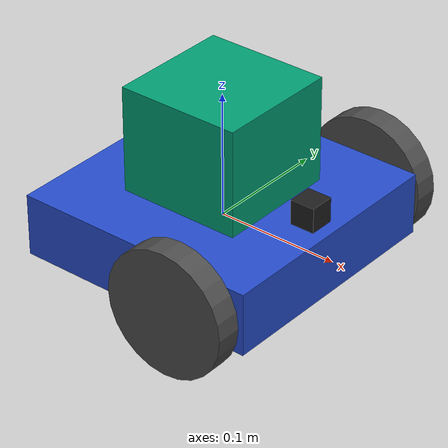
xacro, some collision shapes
<?xml version="1.0"?>
<robot xmlns:xacro="http://www.ros.org/wiki/xacro" name="my_robot">
  <xacro:include filename="$(find my_robot)/urdf/my_robot.gazebo" />

  <!-- Scale the robot size to fit the environment -->
  <xacro:property name="scale" value="1.0" />

  <xacro:property name="chassis_width" value="${scale * 0.20}" />
  <xacro:property name="chassis_length" value="${scale * 0.20}" />
  <xacro:property name="chassis_height" value="${scale * 0.05}" />
  <xacro:property name="chassis_mass" value="${scale * 0.1}" />

  <xacro:property name="camera_width" value="${scale * 0.02}" />
  <xacro:property name="camera_length" value="${scale * 0.02}" />
  <xacro:property name="camera_height" value="${scale * 0.02}" />
  <xacro:property name="camera_mass" value="${scale * 0.02}" />

  <xacro:property name="wheel_length" value="${scale * 0.02}" />
  <xacro:property name="wheel_radius" value="${scale * 0.05}" />
  <xacro:property name="wheel_mass" value="${scale * .05}" />
  <xacro:property name="wheel_inertia" value="${scale * 1e-3}" />
  <xacro:property name="wheel_separation" value="${chassis_width + wheel_length + 2*0.005*scale}" />
  <xacro:property name="wheel_base" value="${scale * 0.32}" />
  <xacro:property name="wheel_y_offset" value="${wheel_separation/2}" />

  <xacro:property name="caster_wheel_radius" value="${(wheel_radius - chassis_height/2)/2}"/>
  <xacro:property name="caster_wheel_joint_offset" value="-${chassis_length/2-caster_wheel_radius}"/>

 <!--All units in m-kg-s-radians unit system -->
  <xacro:property name="M_PI" value="3.1415926535897931" />
  <xacro:property name="M_PI_2" value="1.570796327" />
  <xacro:property name="DEG_TO_RAD" value="0.017453293" />

  <xacro:macro name="sphere_inertia" params="m r">
    <inertial>
      <mass value="${m}"/>
      <inertia ixx="${2.0*m*(r*r)/5.0}" ixy="0.0" ixz="0.0" iyy="${2.0*m*(r*r)/5.0}" iyz="0.0" izz="${2.0*m*(r*r)/5.0}"/>
    </inertial>
  </xacro:macro>

<xacro:macro name="cylinder_inertia" params="m r h">
    <inertial>
      <mass value="${m}"/>
      <inertia ixx="${m*(3*r*r+h*h)/12}" ixy = "0" ixz = "0" iyy="${m*(3*r*r+h*h)/12}" iyz = "0" izz="${m*r*r/2}"/>
    </inertial>
  </xacro:macro>

 <xacro:macro name="wheel" params="lr parent translateX translateY"> <!--lr: left, right -->
    <link name="${lr}_wheel">
      <visual>
        <origin xyz="0 0 0" rpy="0 1.5707 1.5707" />
        <geometry>
          <cylinder length="${wheel_length}" radius="${wheel_radius}" />
        </geometry>
        <material name="DarkGray" />
      </visual>
      <collision>
        <origin xyz="0 0 0" rpy="0 1.5707 1.5707" />
        <geometry>
          <cylinder length="${wheel_length}" radius="${wheel_radius}" />
        </geometry>
      </collision>
      <xacro:cylinder_inertia m="10" r="${wheel_radius}" h="${wheel_length}"/>
    </link>

    <joint name="${lr}_wheel_joint" type="continuous">
      <parent link="${parent}"/>
      <child link="${lr}_wheel"/>
      <origin xyz="${translateX} ${translateY} 0" rpy="0 0 0" />
      <axis xyz="0 1 0" rpy="0 0 0" />
      <limit effort="100" velocity="100"/>
      <joint_properties damping="0.0" friction="0.0"/>
    </joint>

  </xacro:macro>

  <gazebo reference="camera">
    <material>Gazebo/Black</material>
  </gazebo>

  <gazebo reference="chassis">
    <material>Gazebo/Blue</material>
  </gazebo>

  <link name="robot_footprint"/>
  <joint name="robot_footprint_joint" type="fixed">
    <origin xyz="0 0 0" rpy="0 0 0"/>
    <parent link="robot_footprint"/>
    <child link="chassis"/>
  </joint>

  <!-- camera -->
  <link name="camera">
    <inertial>
      <mass value="${camera_mass}"/>
      <origin xyz="0 0 0" rpy="0 0 0"/>
      <inertia ixx="1e-6" ixy="0" ixz="0" iyy="1e-6" iyz="0" izz="1e-6"/>
    </inertial>
    <collision>
      <origin xyz="0 0 0" rpy="0 0 0"/>
      <geometry>
        <box size="${camera_length} ${camera_width} ${camera_height}"/>
      </geometry>
    </collision>
    <visual>
      <origin xyz="0 0 0" rpy="0 0 0"/>
      <geometry>
        <box size="${camera_length} ${camera_width} ${camera_height}"/>
      </geometry>
    </visual>
  </link>

  <!-- lidar -->
  <link name="hokuyo">
    <inertial>
      <mass value="1e-5"/>
      <origin xyz="0 0 0" rpy="0 0 0"/>
      <inertia ixx="1e-6" ixy="0" ixz="0" iyy="1e-6" iyz="0" izz="1e-6"/>
    </inertial>
    <collision>
      <origin xyz="0 0 0" rpy="0 0 0"/>
      <geometry>
        <box size=".1 .1 .1"/>
      </geometry>
    </collision>
    <visual>
      <origin xyz="0 0 0" rpy="0 0 0"/>
      <geometry>
        <mesh filename="package://my_robot/meshes/hokuyo.dae"/>
      </geometry>
    </visual>
  </link>

  <!--- chassis -->
  <link name="chassis">
    <pose>0 0 0.1 0 0 0</pose>
    <inertial>
      <mass value="${chassis_mass}"/>
      <origin xyz="0.0 0 0" rpy=" 0 0 0"/>
      <inertia ixx="0.1" ixy="0" ixz="0" iyy="0.1" iyz="0" izz="0.1"/>
    </inertial>
    <collision name="collision">
      <origin xyz="0 0 0" rpy=" 0 0 0"/>
      <geometry>
        <box size="${chassis_length} ${chassis_width} ${chassis_height}"/>
      </geometry>
    </collision>
    <visual name="chassis_visual">
      <origin xyz="0 0 0" rpy=" 0 0 0"/>
      <geometry>
        <box size="${chassis_length} ${chassis_width} ${chassis_height}"/>
      </geometry>
    </visual>
  </link>

   <link name="caster_wheel">
    <visual>
      <origin xyz="0 0 0" rpy="0 0 0"/>
      <geometry>
        <sphere radius="${caster_wheel_radius}"/>
      </geometry>
    </visual>
    <collision>
      <origin xyz="0 0 0" rpy="0 0 0"/>
      <geometry>
        <sphere radius="${caster_wheel_radius}"/>
      </geometry>
      <surface>
            <friction>
              <ode>
                <mu>0.000000</mu>
                <mu2>0.000000</mu2>
                <slip1>1.000000</slip1>
                <slip2>1.000000</slip2>
              </ode>
            </friction>
          </surface>
    </collision>
    <xacro:sphere_inertia m="5" r="${caster_wheel_radius}"/>
  </link>

  <joint name="caster_wheel_joint" type="continuous">
    <axis xyz="0 1 0" rpy="0 0 0" />
    <parent link="chassis"/>
    <child link="caster_wheel"/>
    <origin xyz="${caster_wheel_joint_offset} 0 -${caster_wheel_radius+chassis_height/2}" rpy="0 0 0"/>
  </joint>

  <joint type="fixed" name="camera_joint">
    <origin xyz="${chassis_length/2 - camera_length} 0 ${chassis_height/2 + camera_height/2}" rpy="0 0 0"/>
    <child link="camera"/>
    <parent link="chassis"/>
    <axis xyz="0 1 0" rpy="0 0 0"/>
  </joint>
  <joint type="fixed" name="hokuyo_joint">
    <origin xyz="0 0 0.06" rpy="0 0 0"/>
    <child link="hokuyo"/>
    <parent link="chassis"/>
    <axis xyz="0 1 0" rpy="0 0 0"/>
  </joint>

  <joint name="camera_optical_joint" type="fixed">
    <origin xyz="0 0 0" rpy="-1.5707 0 -1.5707"/>
    <parent link="camera"/>
    <child link="camera_link_optical"/>
  </joint>

  <link name="camera_link_optical">
  </link>

  <xacro:wheel lr="right" parent="chassis" translateX="${chassis_length/2-wheel_radius}" translateY="-${wheel_y_offset}"/>
  <xacro:wheel lr="left" parent="chassis" translateX="${chassis_length/2-wheel_radius}" translateY="${wheel_y_offset}"/>

</robot>
